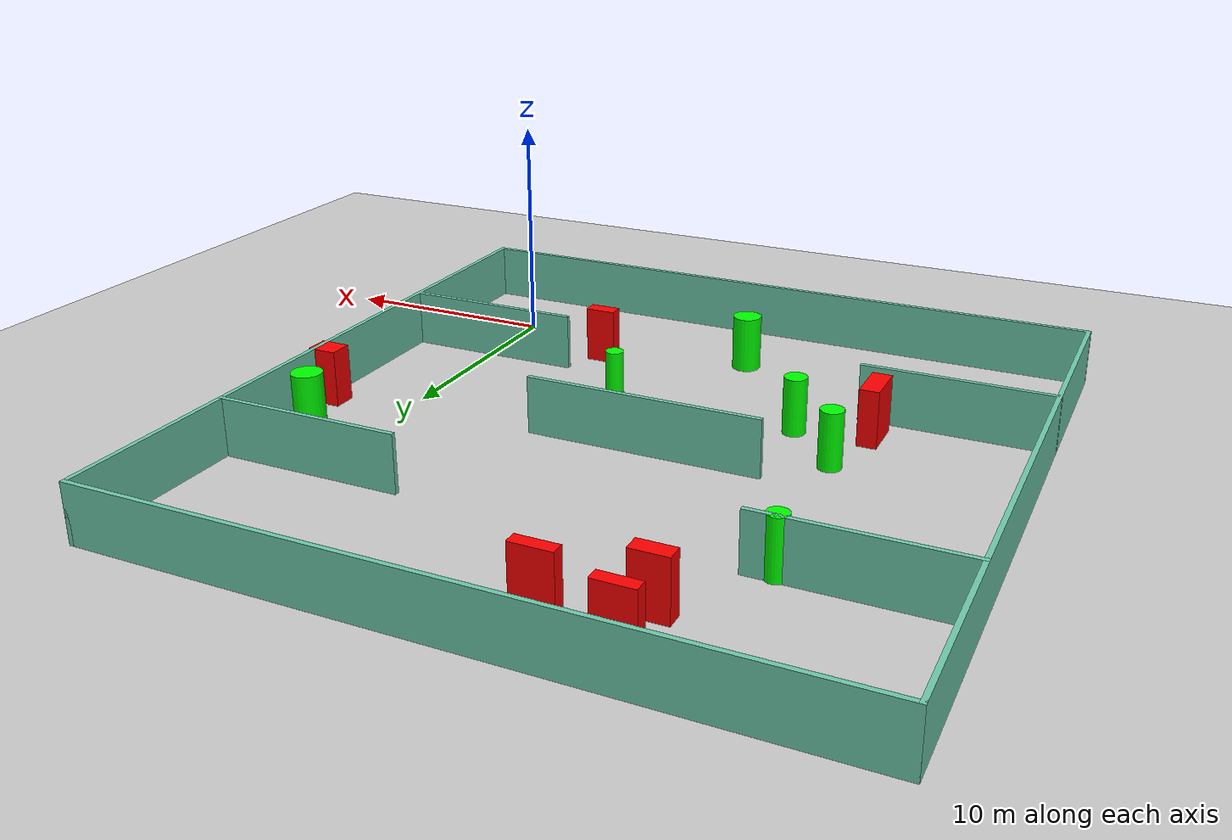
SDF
<sdf version="1.7">
 <world name="default">
  <light name="sun" type="directional">
   <pose>0 0 10 0 -0 0</pose>
   <diffuse>0.8 0.8 0.8 1</diffuse>
   <specular>0.2 0.2 0.2 1</specular>
   <attenuation>
    <range>1000</range>
    <constant>0.9</constant>
    <linear>0.01</linear>
    <quadratic>0.001</quadratic>
   </attenuation>
   <direction>-0.5 0.1 -0.9</direction>
   <spot><inner_angle>0</inner_angle><outer_angle>0</outer_angle><falloff>0</falloff></spot>
  </light>
  <model name="ground_plane">
   <static>1</static>
   <link name="link">
    <collision name="collision">
     <geometry><plane><normal>0 0 1</normal><size>100 100</size></plane></geometry>
     <surface>
      <contact><collide_bitmask>65535</collide_bitmask></contact>
      <friction><ode><mu>100</mu><mu2>50</mu2></ode></friction>
     </surface>
    </collision>
    <visual name="visual">
     <cast_shadows>0</cast_shadows>
     <geometry><plane><normal>0 0 1</normal><size>100 100</size></plane></geometry>
     <material>
      <script><uri>file://media/materials/scripts/gazebo.material</uri><name>Gazebo/Grey</name></script>
     </material>
    </visual>
   </link>
  </model>
  <gravity>0 0 -9.8</gravity>
  <magnetic_field>6e-06 2.3e-05 -4.2e-05</magnetic_field>
  <atmosphere type="adiabatic"/>
  <physics type="ode">
   <max_step_size>0.001</max_step_size>
   <real_time_factor>1</real_time_factor>
   <real_time_update_rate>1000</real_time_update_rate>
  </physics>
  <scene><ambient>0.4 0.4 0.4 1</ambient><background>0.7 0.7 0.7 1</background><shadows>1</shadows></scene>
  <spherical_coordinates>
   <surface_model>EARTH_WGS84</surface_model>
   <latitude_deg>0</latitude_deg>
   <longitude_deg>0</longitude_deg>
   <elevation>0</elevation>
   <heading_deg>0</heading_deg>
  </spherical_coordinates>
  <model name="my_base_walls">
   <link name="Wall_10">
    <collision name="Wall_10_Collision">
     <geometry><box><size>8.2 0.2 2.5</size></box></geometry>
     <pose>0 0 1.25 0 -0 0</pose>
    </collision>
    <visual name="Wall_10_Visual">
     <pose>0 0 1.25 0 -0 0</pose>
     <geometry><box><size>8.2 0.2 2.5</size></box></geometry>
     <material>
      <script><uri>file://media/materials/scripts/gazebo.material</uri><name>Gazebo/Grey</name></script>
      <ambient>0.435294 0.796078 0.67451 1</ambient>
     </material>
     <meta><layer>0</layer></meta>
    </visual>
    <pose>-11 -7 0 0 -0 0</pose>
   </link>
   <link name="Wall_12">
    <collision name="Wall_12_Collision">
     <geometry><box><size>8.2 0.2 2.5</size></box></geometry>
     <pose>0 0 1.25 0 -0 0</pose>
    </collision>
    <visual name="Wall_12_Visual">
     <pose>0 0 1.25 0 -0 0</pose>
     <geometry><box><size>8.2 0.2 2.5</size></box></geometry>
     <material>
      <script><uri>file://media/materials/scripts/gazebo.material</uri><name>Gazebo/Grey</name></script>
      <ambient>0.435294 0.796078 0.67451 1</ambient>
     </material>
     <meta><layer>0</layer></meta>
    </visual>
    <pose>-11 7 0 0 -0 0</pose>
   </link>
   <link name="Wall_14">
    <collision name="Wall_14_Collision">
     <geometry><box><size>8.2 0.2 2.5</size></box></geometry>
     <pose>0 0 1.25 0 -0 0</pose>
    </collision>
    <visual name="Wall_14_Visual">
     <pose>0 0 1.25 0 -0 0</pose>
     <geometry><box><size>8.2 0.2 2.5</size></box></geometry>
     <material>
      <script><uri>file://media/materials/scripts/gazebo.material</uri><name>Gazebo/Grey</name></script>
      <ambient>0.435294 0.796078 0.67451 1</ambient>
     </material>
     <meta><layer>0</layer></meta>
    </visual>
    <pose>11 7 0 0 -0 3.14159</pose>
   </link>
   <link name="Wall_16">
    <collision name="Wall_16_Collision">
     <geometry><box><size>10.2 0.2 2.5</size></box></geometry>
     <pose>0 0 1.25 0 -0 0</pose>
    </collision>
    <visual name="Wall_16_Visual">
     <pose>0 0 1.25 0 -0 0</pose>
     <geometry><box><size>10.2 0.2 2.5</size></box></geometry>
     <material>
      <script><uri>file://media/materials/scripts/gazebo.material</uri><name>Gazebo/Grey</name></script>
      <ambient>0.435294 0.796078 0.67451 1</ambient>
     </material>
     <meta><layer>0</layer></meta>
    </visual>
    <pose>0 0 0 0 -0 3.14159</pose>
   </link>
   <link name="Wall_2">
    <collision name="Wall_2_Collision">
     <geometry><box><size>30.2 0.2 2.5</size></box></geometry>
     <pose>0 0 1.25 0 -0 0</pose>
    </collision>
    <visual name="Wall_2_Visual">
     <pose>0 0 1.25 0 -0 0</pose>
     <geometry><box><size>30.2 0.2 2.5</size></box></geometry>
     <material>
      <script><uri>file://media/materials/scripts/gazebo.material</uri><name>Gazebo/Grey</name></script>
      <ambient>0.435294 0.796078 0.67451 1</ambient>
     </material>
     <meta><layer>0</layer></meta>
    </visual>
    <pose>0 -15 0 0 -0 3.14159</pose>
   </link>
   <link name="Wall_3">
    <collision name="Wall_3_Collision">
     <geometry><box><size>30.2 0.2 2.5</size></box></geometry>
     <pose>0 0 1.25 0 -0 0</pose>
    </collision>
    <visual name="Wall_3_Visual">
     <pose>0 0 1.25 0 -0 0</pose>
     <geometry><box><size>30.2 0.2 2.5</size></box></geometry>
     <material>
      <script><uri>file://media/materials/scripts/gazebo.material</uri><name>Gazebo/Grey</name></script>
      <ambient>0.435294 0.796078 0.67451 1</ambient>
     </material>
     <meta><layer>0</layer></meta>
    </visual>
    <pose>-15 0 0 0 -0 1.5708</pose>
   </link>
   <link name="Wall_4">
    <collision name="Wall_4_Collision">
     <geometry><box><size>30.2 0.2 2.5</size></box></geometry>
     <pose>0 0 1.25 0 -0 0</pose>
    </collision>
    <visual name="Wall_4_Visual">
     <pose>0 0 1.25 0 -0 0</pose>
     <geometry><box><size>30.2 0.2 2.5</size></box></geometry>
     <material>
      <script><uri>file://media/materials/scripts/gazebo.material</uri><name>Gazebo/Grey</name></script>
      <ambient>0.435294 0.796078 0.67451 1</ambient>
     </material>
     <meta><layer>0</layer></meta>
    </visual>
    <pose>0 15 0 0 -0 0</pose>
   </link>
   <link name="Wall_6">
    <collision name="Wall_6_Collision">
     <geometry><box><size>30.2 0.2 2.5</size></box></geometry>
     <pose>0 0 1.25 0 -0 0</pose>
    </collision>
    <visual name="Wall_6_Visual">
     <pose>0 0 1.25 0 -0 0</pose>
     <geometry><box><size>30.2 0.2 2.5</size></box></geometry>
     <material>
      <script><uri>file://media/materials/scripts/gazebo.material</uri><name>Gazebo/Grey</name></script>
      <ambient>0.435294 0.796078 0.67451 1</ambient>
     </material>
     <meta><layer>0</layer></meta>
    </visual>
    <pose>15 0 0 0 -0 1.5708</pose>
   </link>
   <link name="Wall_8">
    <collision name="Wall_8_Collision">
     <geometry><box><size>8.2 0.2 2.5</size></box></geometry>
     <pose>0 0 1.25 0 -0 0</pose>
    </collision>
    <visual name="Wall_8_Visual">
     <pose>0 0 1.25 0 -0 0</pose>
     <geometry><box><size>8.2 0.2 2.5</size></box></geometry>
     <material>
      <script><uri>file://media/materials/scripts/gazebo.material</uri><name>Gazebo/Grey</name></script>
      <ambient>0.435294 0.796078 0.67451 1</ambient>
     </material>
     <meta><layer>0</layer></meta>
    </visual>
    <pose>11 -7 0 0 -0 3.14159</pose>
   </link>
   <static>1</static>
   <pose>-11 11 0 0 -0 0</pose>
  </model>
  <model name="cylinder1">
   <static>1</static>
   <link name="link">
    <inertial>
     <mass>1</mass>
     <inertia><ixx>0.5</ixx><ixy>0</ixy><ixz>0</ixz><iyy>0.5</iyy><iyz>0</iyz><izz>1</izz></inertia>
    </inertial>
    <collision name="collision">
     <geometry><cylinder><radius>0.4994772977259363</radius><length>2.5</length></cylinder></geometry>
    </collision>
    <visual name="visual">
     <geometry><cylinder><radius>0.4994772977259363</radius><length>2.5</length></cylinder></geometry>
     <material>
      <ambient>0 1 0 1</ambient>
      <diffuse>0 1 0 1</diffuse>
      <specular>0.1 0.1 0.1 1</specular>
      <emissive>0 0 0 0</emissive>
     </material>
    </visual>
   </link>
   <pose>-15.878908722153009 6.449588497060411 1.25 0 0 0</pose>
  </model>
  <model name="cylinder2">
   <static>1</static>
   <link name="link">
    <inertial>
     <mass>1</mass>
     <inertia><ixx>0.5</ixx><ixy>0</ixy><ixz>0</ixz><iyy>0.5</iyy><iyz>0</iyz><izz>1</izz></inertia>
    </inertial>
    <collision name="collision">
     <geometry><cylinder><radius>0.6697630226488036</radius><length>2.5</length></cylinder></geometry>
    </collision>
    <visual name="visual">
     <geometry><cylinder><radius>0.6697630226488036</radius><length>2.5</length></cylinder></geometry>
     <material>
      <ambient>0 1 0 1</ambient>
      <diffuse>0 1 0 1</diffuse>
      <specular>0.1 0.1 0.1 1</specular>
      <emissive>0 0 0 0</emissive>
     </material>
    </visual>
   </link>
   <pose>2.5915698399088427 14.457994667246403 1.25 0 0 0</pose>
  </model>
  <model name="cylinder3">
   <static>1</static>
   <link name="link">
    <inertial>
     <mass>1</mass>
     <inertia><ixx>0.5</ixx><ixy>0</ixy><ixz>0</ixz><iyy>0.5</iyy><iyz>0</iyz><izz>1</izz></inertia>
    </inertial>
    <collision name="collision">
     <geometry><cylinder><radius>0.4945631847091805</radius><length>2.5</length></cylinder></geometry>
    </collision>
    <visual name="visual">
     <geometry><cylinder><radius>0.4945631847091805</radius><length>2.5</length></cylinder></geometry>
     <material>
      <ambient>0 1 0 1</ambient>
      <diffuse>0 1 0 1</diffuse>
      <specular>0.1 0.1 0.1 1</specular>
      <emissive>0 0 0 0</emissive>
     </material>
    </visual>
   </link>
   <pose>-18.22423519515187 8.99513727605236 1.25 0 0 0</pose>
  </model>
  <model name="cylinder4">
   <static>1</static>
   <link name="link">
    <inertial>
     <mass>1</mass>
     <inertia><ixx>0.5</ixx><ixy>0</ixy><ixz>0</ixz><iyy>0.5</iyy><iyz>0</iyz><izz>1</izz></inertia>
    </inertial>
    <collision name="collision">
     <geometry><cylinder><radius>0.6413214799354925</radius><length>2.5</length></cylinder></geometry>
    </collision>
    <visual name="visual">
     <geometry><cylinder><radius>0.6413214799354925</radius><length>2.5</length></cylinder></geometry>
     <material>
      <ambient>0 1 0 1</ambient>
      <diffuse>0 1 0 1</diffuse>
      <specular>0.1 0.1 0.1 1</specular>
      <emissive>0 0 0 0</emissive>
     </material>
    </visual>
   </link>
   <pose>-11.507677724259585 0.47176491408187005 1.25 0 0 0</pose>
  </model>
  <model name="cylinder5">
   <static>1</static>
   <link name="link">
    <inertial>
     <mass>1</mass>
     <inertia><ixx>0.5</ixx><ixy>0</ixy><ixz>0</ixz><iyy>0.5</iyy><iyz>0</iyz><izz>1</izz></inertia>
    </inertial>
    <collision name="collision">
     <geometry><cylinder><radius>0.4331738009254549</radius><length>2.5</length></cylinder></geometry>
    </collision>
    <visual name="visual">
     <geometry><cylinder><radius>0.4331738009254549</radius><length>2.5</length></cylinder></geometry>
     <material>
      <ambient>0 1 0 1</ambient>
      <diffuse>0 1 0 1</diffuse>
      <specular>0.1 0.1 0.1 1</specular>
      <emissive>0 0 0 0</emissive>
     </material>
    </visual>
   </link>
   <pose>-19.13154388061359 17.807264056549993 1.25 0 0 0</pose>
  </model>
  <model name="cylinder6">
   <static>1</static>
   <link name="link">
    <inertial>
     <mass>1</mass>
     <inertia><ixx>0.5</ixx><ixy>0</ixy><ixz>0</ixz><iyy>0.5</iyy><iyz>0</iyz><izz>1</izz></inertia>
    </inertial>
    <collision name="collision">
     <geometry><cylinder><radius>0.38645515997483354</radius><length>2.5</length></cylinder></geometry>
    </collision>
    <visual name="visual">
     <geometry><cylinder><radius>0.38645515997483354</radius><length>2.5</length></cylinder></geometry>
     <material>
      <ambient>0 1 0 1</ambient>
      <diffuse>0 1 0 1</diffuse>
      <specular>0.1 0.1 0.1 1</specular>
      <emissive>0 0 0 0</emissive>
     </material>
    </visual>
   </link>
   <pose>-7.894352541047219 6.975782956580215 1.25 0 0 0</pose>
  </model>
  <model name="box1">
   <static>1</static>
   <link name="link">
    <inertial>
     <mass>1</mass>
     <inertia><ixx>0.083</ixx><ixy>0</ixy><ixz>0</ixz><iyy>0.083</iyy><iyz>0</iyz><izz>0.083</izz></inertia>
    </inertial>
    <collision name="collision">
     <geometry><box><size>1.546563612432201 0.7022824921638311 2.5</size></box></geometry>
    </collision>
    <visual name="visual">
     <geometry><box><size>1.546563612432201 0.7022824921638311 2.5</size></box></geometry>
     <material>
      <ambient>1 0 0 1</ambient>
      <diffuse>1 0 0 1</diffuse>
      <specular>0.1 0.1 0.1 1</specular>
      <emissive>0 0 0 0</emissive>
     </material>
    </visual>
    <sensor name="my_contact" type="contact">
     <contact><collision>box_collision</collision><topic>__default_topic__</topic></contact>
    </sensor>
   </link>
   <pose>-16.343029117062525 21.653775190194864 1.25 0 0 0</pose>
  </model>
  <model name="box2">
   <static>1</static>
   <link name="link">
    <inertial>
     <mass>1</mass>
     <inertia><ixx>0.083</ixx><ixy>0</ixy><ixz>0</ixz><iyy>0.083</iyy><iyz>0</iyz><izz>0.083</izz></inertia>
    </inertial>
    <collision name="collision">
     <geometry><box><size>1.3544801387821157 0.6544204154869784 2.5</size></box></geometry>
    </collision>
    <visual name="visual">
     <geometry><box><size>1.3544801387821157 0.6544204154869784 2.5</size></box></geometry>
     <material>
      <ambient>1 0 0 1</ambient>
      <diffuse>1 0 0 1</diffuse>
      <specular>0.1 0.1 0.1 1</specular>
      <emissive>0 0 0 0</emissive>
     </material>
    </visual>
    <sensor name="my_contact" type="contact">
     <contact><collision>box_collision</collision><topic>__default_topic__</topic></contact>
    </sensor>
   </link>
   <pose>-5.051517444037174 2.345865270536825 1.25 0 0 0</pose>
  </model>
  <model name="box3">
   <static>1</static>
   <link name="link">
    <inertial>
     <mass>1</mass>
     <inertia><ixx>0.083</ixx><ixy>0</ixy><ixz>0</ixz><iyy>0.083</iyy><iyz>0</iyz><izz>0.083</izz></inertia>
    </inertial>
    <collision name="collision">
     <geometry><box><size>1.7386291073669824 0.5498055454441012 2.5</size></box></geometry>
    </collision>
    <visual name="visual">
     <geometry><box><size>1.7386291073669824 0.5498055454441012 2.5</size></box></geometry>
     <material>
      <ambient>1 0 0 1</ambient>
      <diffuse>1 0 0 1</diffuse>
      <specular>0.1 0.1 0.1 1</specular>
      <emissive>0 0 0 0</emissive>
     </material>
    </visual>
    <sensor name="my_contact" type="contact">
     <contact><collision>box_collision</collision><topic>__default_topic__</topic></contact>
    </sensor>
   </link>
   <pose>-12.806897568739217 22.962489654431565 1.25 0 0 0</pose>
  </model>
  <model name="box4">
   <static>1</static>
   <link name="link">
    <inertial>
     <mass>1</mass>
     <inertia><ixx>0.083</ixx><ixy>0</ixy><ixz>0</ixz><iyy>0.083</iyy><iyz>0</iyz><izz>0.083</izz></inertia>
    </inertial>
    <collision name="collision">
     <geometry><box><size>1.6596963904961117 0.5513679797582639 2.5</size></box></geometry>
    </collision>
    <visual name="visual">
     <geometry><box><size>1.6596963904961117 0.5513679797582639 2.5</size></box></geometry>
     <material>
      <ambient>1 0 0 1</ambient>
      <diffuse>1 0 0 1</diffuse>
      <specular>0.1 0.1 0.1 1</specular>
      <emissive>0 0 0 0</emissive>
     </material>
    </visual>
    <sensor name="my_contact" type="contact">
     <contact><collision>box_collision</collision><topic>__default_topic__</topic></contact>
    </sensor>
   </link>
   <pose>-16.139386283779658 23.86362481388399 1.25 0 0 0</pose>
  </model>
  <model name="box5">
   <static>1</static>
   <link name="link">
    <inertial>
     <mass>1</mass>
     <inertia><ixx>0.083</ixx><ixy>0</ixy><ixz>0</ixz><iyy>0.083</iyy><iyz>0</iyz><izz>0.083</izz></inertia>
    </inertial>
    <collision name="collision">
     <geometry><box><size>0.8411742968933038 1.975918274916037 2.5</size></box></geometry>
    </collision>
    <visual name="visual">
     <geometry><box><size>0.8411742968933038 1.975918274916037 2.5</size></box></geometry>
     <material>
      <ambient>1 0 0 1</ambient>
      <diffuse>1 0 0 1</diffuse>
      <specular>0.1 0.1 0.1 1</specular>
      <emissive>0 0 0 0</emissive>
     </material>
    </visual>
    <sensor name="my_contact" type="contact">
     <contact><collision>box_collision</collision><topic>__default_topic__</topic></contact>
    </sensor>
   </link>
   <pose>-19.02113172125576 5.663189800652713 1.25 0 0 0</pose>
  </model>
  <model name="box6">
   <static>1</static>
   <link name="link">
    <inertial>
     <mass>1</mass>
     <inertia><ixx>0.083</ixx><ixy>0</ixy><ixz>0</ixz><iyy>0.083</iyy><iyz>0</iyz><izz>0.083</izz></inertia>
    </inertial>
    <collision name="collision">
     <geometry><box><size>1.2895102059666714 1.024321708983253 2.5</size></box></geometry>
    </collision>
    <visual name="visual">
     <geometry><box><size>1.2895102059666714 1.024321708983253 2.5</size></box></geometry>
     <material>
      <ambient>1 0 0 1</ambient>
      <diffuse>1 0 0 1</diffuse>
      <specular>0.1 0.1 0.1 1</specular>
      <emissive>0 0 0 0</emissive>
     </material>
    </visual>
    <sensor name="my_contact" type="contact">
     <contact><collision>box_collision</collision><topic>__default_topic__</topic></contact>
    </sensor>
   </link>
   <pose>3.5456563274234725 11.719896756444442 1.25 0 0 0</pose>
  </model>
 </world>
</sdf>
